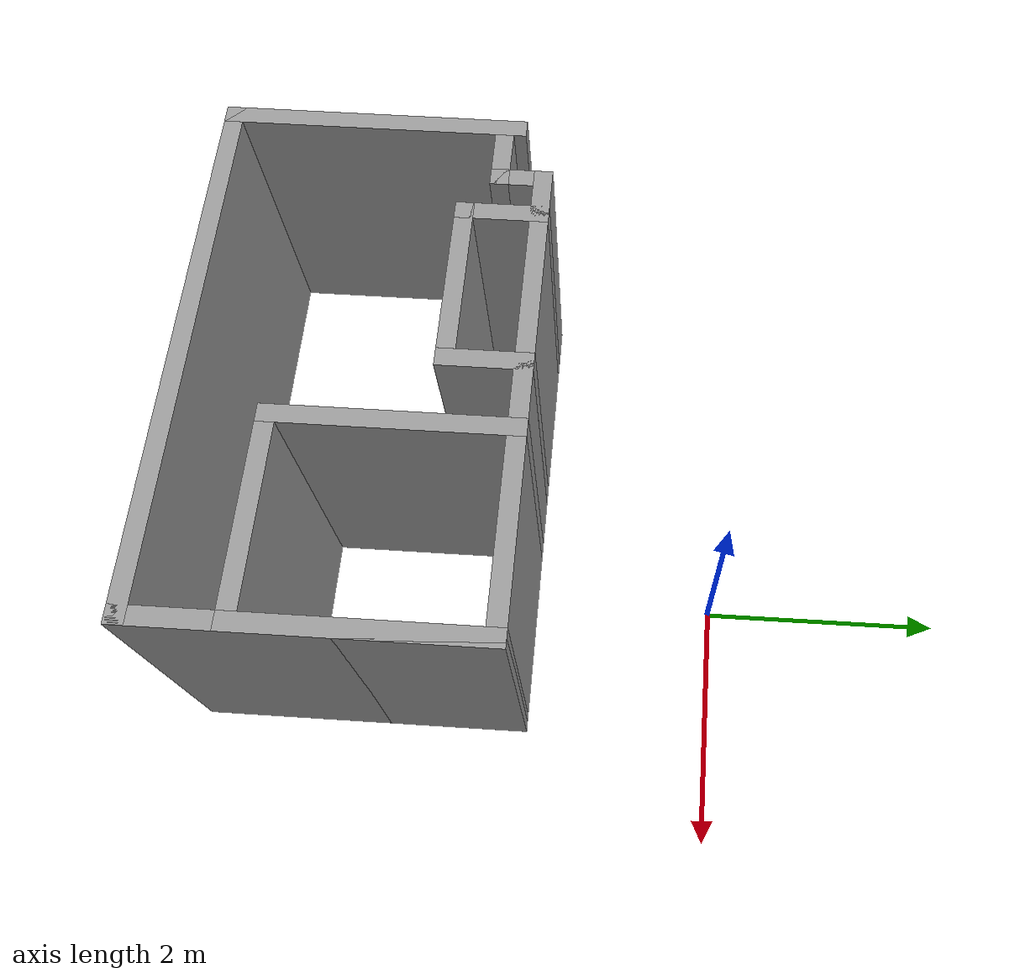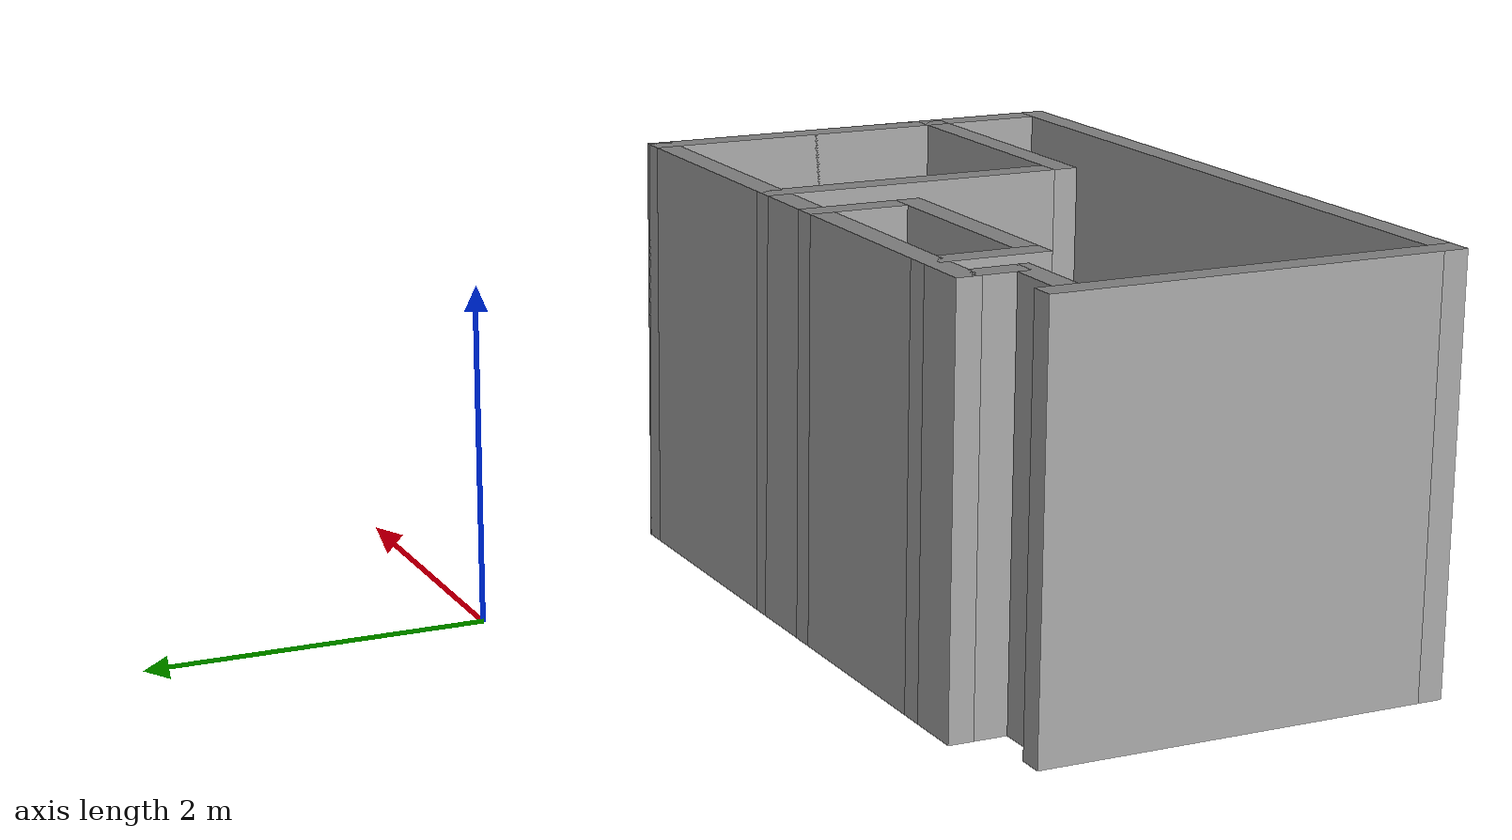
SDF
<?xml version='1.0'?>
<sdf version='1.7'>
  <model name='halfapartment'>
    <pose>-1.095 -2.1425 0 0 -0 0</pose>
    <link name='Wall_16'>
      <collision name='Wall_16_Collision'>
        <geometry>
          <box>
            <size>2 0.15 2.5</size>
          </box>
        </geometry>
        <pose>0 0 1.25 0 -0 0</pose>
      </collision>
      <visual name='Wall_16_Visual'>
        <pose>0 0 1.25 0 -0 0</pose>
        <geometry>
          <box>
            <size>2 0.15 2.5</size>
          </box>
        </geometry>
        <material>
          <script>
            <uri>file://media/materials/scripts/gazebo.material</uri>
            <name>Gazebo/Grey</name>
          </script>
          <ambient>1 1 1 1</ambient>
        </material>
        <meta>
          <layer>0</layer>
        </meta>
      </visual>
      <pose>2.175 -0.3925 0 0 -0 -1.5708</pose>
    </link>
    <link name='Wall_17'>
      <collision name='Wall_17_Collision'>
        <geometry>
          <box>
            <size>1.75 0.15 2.5</size>
          </box>
        </geometry>
        <pose>0 0 1.25 0 -0 0</pose>
      </collision>
      <visual name='Wall_17_Visual'>
        <pose>0 0 1.25 0 -0 0</pose>
        <geometry>
          <box>
            <size>1.75 0.15 2.5</size>
          </box>
        </geometry>
        <material>
          <script>
            <uri>file://media/materials/scripts/gazebo.material</uri>
            <name>Gazebo/Grey</name>
          </script>
          <ambient>1 1 1 1</ambient>
        </material>
        <meta>
          <layer>0</layer>
        </meta>
      </visual>
      <pose>1.375 -1.3175 0 0 -0 3.14159</pose>
    </link>
    <link name='Wall_18'>
      <collision name='Wall_18_Collision'>
        <geometry>
          <box>
            <size>2 0.15 2.5</size>
          </box>
        </geometry>
        <pose>0 0 1.25 0 -0 0</pose>
      </collision>
      <visual name='Wall_18_Visual'>
        <pose>0 0 1.25 0 -0 0</pose>
        <geometry>
          <box>
            <size>2 0.15 2.5</size>
          </box>
        </geometry>
        <material>
          <script>
            <uri>file://media/materials/scripts/gazebo.material</uri>
            <name>Gazebo/Grey</name>
          </script>
          <ambient>1 1 1 1</ambient>
        </material>
        <meta>
          <layer>0</layer>
        </meta>
      </visual>
      <pose>0.575 -0.3925 0 0 -0 1.5708</pose>
    </link>
    <link name='Wall_3'>
      <collision name='Wall_3_Collision'>
        <geometry>
          <box>
            <size>4.5 0.15 2.5</size>
          </box>
        </geometry>
        <pose>0 0 1.25 0 -0 0</pose>
      </collision>
      <visual name='Wall_3_Visual'>
        <pose>0 0 1.25 0 -0 0</pose>
        <geometry>
          <box>
            <size>4.5 0.15 2.5</size>
          </box>
        </geometry>
        <material>
          <script>
            <uri>file://media/materials/scripts/gazebo.material</uri>
            <name>Gazebo/Grey</name>
          </script>
          <ambient>1 1 1 1</ambient>
        </material>
        <meta>
          <layer>0</layer>
        </meta>
      </visual>
      <pose>-0 -2.0675 0 0 -0 0</pose>
    </link>
    <link name='Wall_37'>
      <collision name='Wall_37_Collision'>
        <geometry>
          <box>
            <size>0.75 0.15 2.5</size>
          </box>
        </geometry>
        <pose>0 0 1.25 0 -0 0</pose>
      </collision>
      <visual name='Wall_37_Visual'>
        <pose>0 0 1.25 0 -0 0</pose>
        <geometry>
          <box>
            <size>0.75 0.15 2.5</size>
          </box>
        </geometry>
        <material>
          <script>
            <uri>file://media/materials/scripts/gazebo.material</uri>
            <name>Gazebo/Grey</name>
          </script>
          <ambient>1 1 1 1</ambient>
        </material>
        <meta>
          <layer>0</layer>
        </meta>
      </visual>
      <pose>-1.3284 0.232656 0 0 -0 -1.5708</pose>
    </link>
    <link name='Wall_38'>
      <collision name='Wall_38_Collision'>
        <geometry>
          <box>
            <size>1.5 0.15 2.5</size>
          </box>
        </geometry>
        <pose>0 0 1.25 0 -0 0</pose>
      </collision>
      <visual name='Wall_38_Visual'>
        <pose>0 0 1.25 0 -0 0</pose>
        <geometry>
          <box>
            <size>1.5 0.15 2.5</size>
          </box>
        </geometry>
        <material>
          <script>
            <uri>file://media/materials/scripts/gazebo.material</uri>
            <name>Gazebo/Grey</name>
          </script>
          <ambient>1 1 1 1</ambient>
        </material>
        <meta>
          <layer>0</layer>
        </meta>
      </visual>
      <pose>-0.653396 -0.067344 0 0 -0 0</pose>
    </link>
    <link name='Wall_4'>
      <collision name='Wall_4_Collision'>
        <geometry>
          <box>
            <size>2.75 0.15 2.5</size>
          </box>
        </geometry>
        <pose>0 0 1.25 0 -0 0</pose>
      </collision>
      <visual name='Wall_4_Visual'>
        <pose>0 0 1.25 0 -0 0</pose>
        <geometry>
          <box>
            <size>2.75 0.15 2.5</size>
          </box>
        </geometry>
        <material>
          <script>
            <uri>file://media/materials/scripts/gazebo.material</uri>
            <name>Gazebo/Grey</name>
          </script>
          <ambient>1 1 1 1</ambient>
        </material>
        <meta>
          <layer>0</layer>
        </meta>
      </visual>
      <pose>2.175 -0.7675 0 0 -0 1.5708</pose>
    </link>
    <link name='Wall_40'>
      <collision name='Wall_40_Collision'>
        <geometry>
          <box>
            <size>0.75 0.15 2.5</size>
          </box>
        </geometry>
        <pose>0 0 1.25 0 -0 0</pose>
      </collision>
      <visual name='Wall_40_Visual'>
        <pose>0 0 1.25 0 -0 0</pose>
        <geometry>
          <box>
            <size>0.75 0.15 2.5</size>
          </box>
        </geometry>
        <material>
          <script>
            <uri>file://media/materials/scripts/gazebo.material</uri>
            <name>Gazebo/Grey</name>
          </script>
          <ambient>1 1 1 1</ambient>
        </material>
        <meta>
          <layer>0</layer>
        </meta>
      </visual>
      <pose>0.021604 0.232656 0 0 -0 1.5708</pose>
    </link>
    <link name='Wall_45'>
      <collision name='Wall_45_Collision'>
        <geometry>
          <box>
            <size>2.5 0.15 2.5</size>
          </box>
        </geometry>
        <pose>0 0 1.25 0 -0 0</pose>
      </collision>
      <visual name='Wall_45_Visual'>
        <pose>0 0 1.25 0 -0 0</pose>
        <geometry>
          <box>
            <size>2.5 0.15 2.5</size>
          </box>
        </geometry>
        <material>
          <script>
            <uri>file://media/materials/scripts/gazebo.material</uri>
            <name>Gazebo/Grey</name>
          </script>
          <ambient>1 1 1 1</ambient>
        </material>
        <meta>
          <layer>0</layer>
        </meta>
      </visual>
      <pose>-2.175 -0.8925 0 0 -0 1.5708</pose>
    </link>
    <link name='Wall_5'>
      <collision name='Wall_5_Collision'>
        <geometry>
          <box>
            <size>4 0.15 2.5</size>
          </box>
        </geometry>
        <pose>0 0 1.25 0 -0 0</pose>
      </collision>
      <visual name='Wall_5_Visual'>
        <pose>0 0 1.25 0 -0 0</pose>
        <geometry>
          <box>
            <size>4 0.15 2.5</size>
          </box>
        </geometry>
        <material>
          <script>
            <uri>file://media/materials/scripts/gazebo.material</uri>
            <name>Gazebo/Grey</name>
          </script>
          <ambient>1 1 1 1</ambient>
        </material>
        <meta>
          <layer>0</layer>
        </meta>
      </visual>
      <pose>0.25 0.5325 0 0 -0 3.14159</pose>
    </link>
    <link name='Wall_6'>
      <collision name='Wall_6_Collision'>
        <geometry>
          <box>
            <size>0.5 0.15 2.5</size>
          </box>
        </geometry>
        <pose>0 0 1.25 0 -0 0</pose>
      </collision>
      <visual name='Wall_6_Visual'>
        <pose>0 0 1.25 0 -0 0</pose>
        <geometry>
          <box>
            <size>0.5 0.15 2.5</size>
          </box>
        </geometry>
        <material>
          <script>
            <uri>file://media/materials/scripts/gazebo.material</uri>
            <name>Gazebo/Grey</name>
          </script>
          <ambient>1 1 1 1</ambient>
        </material>
        <meta>
          <layer>0</layer>
        </meta>
      </visual>
      <pose>-1.675 0.3575 0 0 -0 -1.5708</pose>
    </link>
    <link name='Wall_7'>
      <collision name='Wall_7_Collision'>
        <geometry>
          <box>
            <size>0.5 0.15 2.5</size>
          </box>
        </geometry>
        <pose>0 0 1.25 0 -0 0</pose>
      </collision>
      <visual name='Wall_7_Visual'>
        <pose>0 0 1.25 0 -0 0</pose>
        <geometry>
          <box>
            <size>0.5 0.15 2.5</size>
          </box>
        </geometry>
        <material>
          <script>
            <uri>file://media/materials/scripts/gazebo.material</uri>
            <name>Gazebo/Grey</name>
          </script>
          <ambient>1 1 1 1</ambient>
        </material>
        <meta>
          <layer>0</layer>
        </meta>
      </visual>
      <pose>-1.85 0.1825 0 0 -0 3.14159</pose>
    </link>
    <static>1</static>
  </model>
</sdf>
